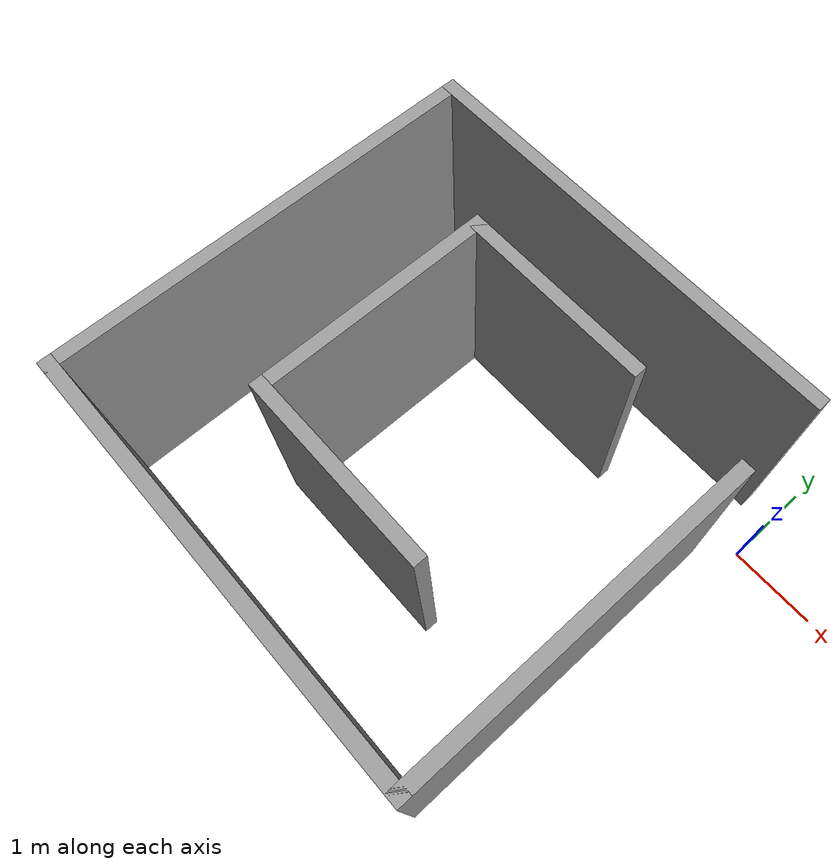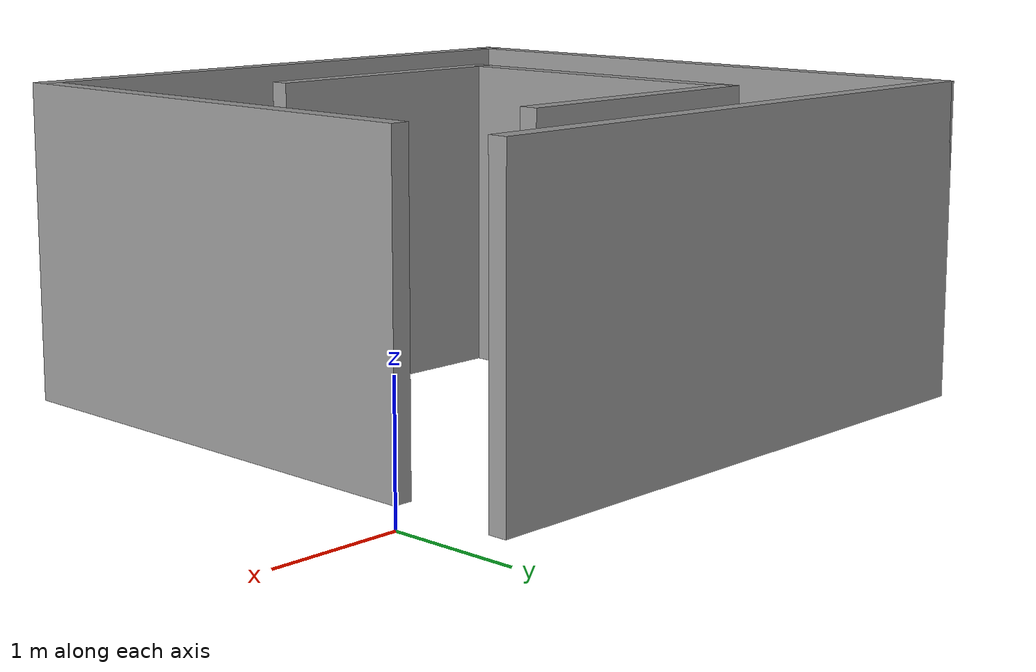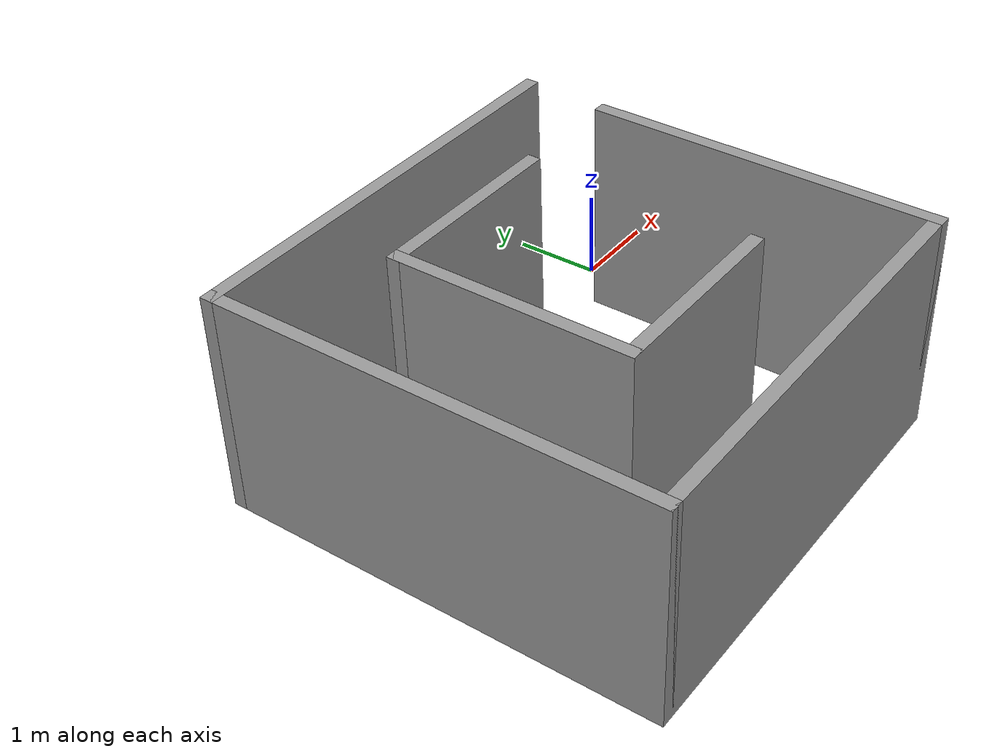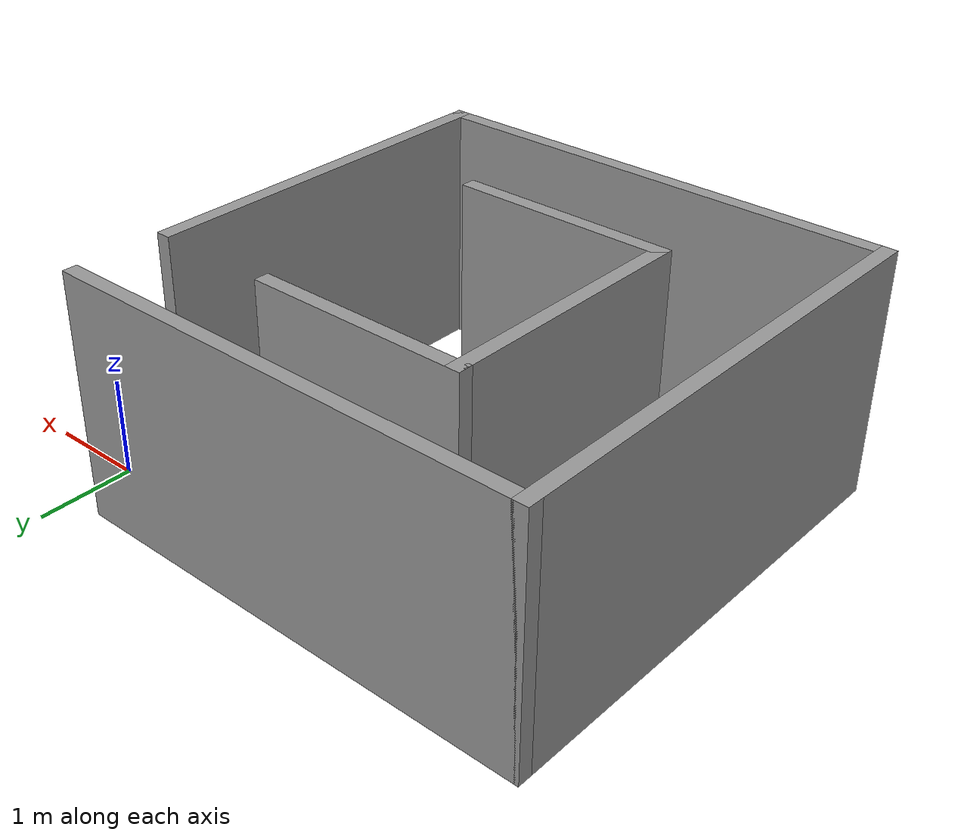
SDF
<?xml version='1.0'?>
<sdf version='1.7'>
  <model name='maze'>
    <pose>-2.67361 -1.88106 0 0 -0 0</pose>
    <link name='Wall_0'>
      <collision name='Wall_0_Collision'>
        <geometry>
          <box>
            <size>5 0.15 2.5</size>
          </box>
        </geometry>
        <pose>0 0 1.25 0 -0 0</pose>
      </collision>
      <visual name='Wall_0_Visual'>
        <pose>0 0 1.25 0 -0 0</pose>
        <geometry>
          <box>
            <size>5 0.15 2.5</size>
          </box>
        </geometry>
        <material>
          <script>
            <uri>file://media/materials/scripts/gazebo.material</uri>
            <name>Gazebo/Grey</name>
          </script>
          <ambient>1 1 1 1</ambient>
        </material>
        <meta>
          <layer>0</layer>
        </meta>
      </visual>
      <pose>-2.59861 0 0 0 -0 -1.5708</pose>
    </link>
    <link name='Wall_1'>
      <collision name='Wall_1_Collision'>
        <geometry>
          <box>
            <size>5 0.15 2.5</size>
          </box>
        </geometry>
        <pose>0 0 1.25 0 -0 0</pose>
      </collision>
      <visual name='Wall_1_Visual'>
        <pose>0 0 1.25 0 -0 0</pose>
        <geometry>
          <box>
            <size>5 0.15 2.5</size>
          </box>
        </geometry>
        <material>
          <script>
            <uri>file://media/materials/scripts/gazebo.material</uri>
            <name>Gazebo/Grey</name>
          </script>
          <ambient>1 1 1 1</ambient>
        </material>
        <meta>
          <layer>0</layer>
        </meta>
      </visual>
      <pose>-0.173612 -2.425 0 0 -0 0</pose>
    </link>
    <link name='Wall_10'>
      <collision name='Wall_10_Collision'>
        <geometry>
          <box>
            <size>2.25 0.15 2.5</size>
          </box>
        </geometry>
        <pose>0 0 1.25 0 -0 0</pose>
      </collision>
      <visual name='Wall_10_Visual'>
        <pose>0 0 1.25 0 -0 0</pose>
        <geometry>
          <box>
            <size>2.25 0.15 2.5</size>
          </box>
        </geometry>
        <material>
          <script>
            <uri>file://media/materials/scripts/gazebo.material</uri>
            <name>Gazebo/Grey</name>
          </script>
          <ambient>1 1 1 1</ambient>
        </material>
        <meta>
          <layer>0</layer>
        </meta>
      </visual>
      <pose>-0.104312 -1.14043 0 0 -0 0</pose>
    </link>
    <link name='Wall_2'>
      <collision name='Wall_2_Collision'>
        <geometry>
          <box>
            <size>4 0.15 2.5</size>
          </box>
        </geometry>
        <pose>0 0 1.25 0 -0 0</pose>
      </collision>
      <visual name='Wall_2_Visual'>
        <pose>0 0 1.25 0 -0 0</pose>
        <geometry>
          <box>
            <size>4 0.15 2.5</size>
          </box>
        </geometry>
        <material>
          <script>
            <uri>file://media/materials/scripts/gazebo.material</uri>
            <name>Gazebo/Grey</name>
          </script>
          <ambient>1 1 1 1</ambient>
        </material>
        <meta>
          <layer>0</layer>
        </meta>
      </visual>
      <pose>2.25139 -0.5 0 0 -0 1.5708</pose>
    </link>
    <link name='Wall_5'>
      <collision name='Wall_5_Collision'>
        <geometry>
          <box>
            <size>5 0.15 2.5</size>
          </box>
        </geometry>
        <pose>0 0 1.25 0 -0 0</pose>
      </collision>
      <visual name='Wall_5_Visual'>
        <pose>0 0 1.25 0 -0 0</pose>
        <geometry>
          <box>
            <size>5 0.15 2.5</size>
          </box>
        </geometry>
        <material>
          <script>
            <uri>file://media/materials/scripts/gazebo.material</uri>
            <name>Gazebo/Grey</name>
          </script>
          <ambient>1 1 1 1</ambient>
        </material>
        <meta>
          <layer>0</layer>
        </meta>
      </visual>
      <pose>-0.173612 2.425 0 0 -0 0</pose>
    </link>
    <link name='Wall_8'>
      <collision name='Wall_8_Collision'>
        <geometry>
          <box>
            <size>2.25 0.15 2.5</size>
          </box>
        </geometry>
        <pose>0 0 1.25 0 -0 0</pose>
      </collision>
      <visual name='Wall_8_Visual'>
        <pose>0 0 1.25 0 -0 0</pose>
        <geometry>
          <box>
            <size>2.25 0.15 2.5</size>
          </box>
        </geometry>
        <material>
          <script>
            <uri>file://media/materials/scripts/gazebo.material</uri>
            <name>Gazebo/Grey</name>
          </script>
          <ambient>1 1 1 1</ambient>
        </material>
        <meta>
          <layer>0</layer>
        </meta>
      </visual>
      <pose>-0.104312 1.45958 0 0 -0 3.14159</pose>
    </link>
    <link name='Wall_9'>
      <collision name='Wall_9_Collision'>
        <geometry>
          <box>
            <size>2.75 0.15 2.5</size>
          </box>
        </geometry>
        <pose>0 0 1.25 0 -0 0</pose>
      </collision>
      <visual name='Wall_9_Visual'>
        <pose>0 0 1.25 0 -0 0</pose>
        <geometry>
          <box>
            <size>2.75 0.15 2.5</size>
          </box>
        </geometry>
        <material>
          <script>
            <uri>file://media/materials/scripts/gazebo.material</uri>
            <name>Gazebo/Grey</name>
          </script>
          <ambient>1 1 1 1</ambient>
        </material>
        <meta>
          <layer>0</layer>
        </meta>
      </visual>
      <pose>-1.15431 0.159575 0 0 -0 -1.5708</pose>
    </link>
    <static>1</static>
  </model>
</sdf>
